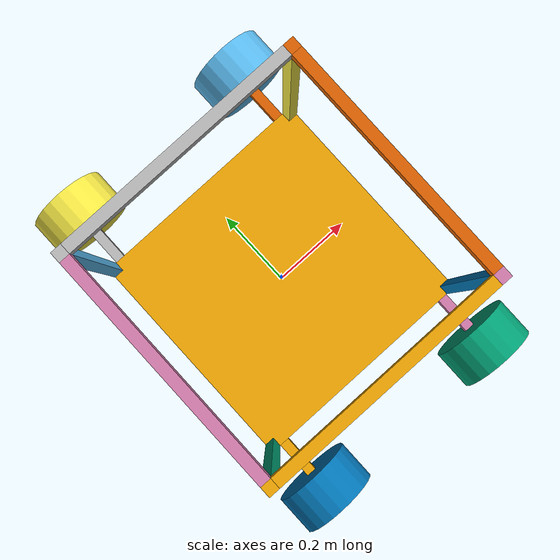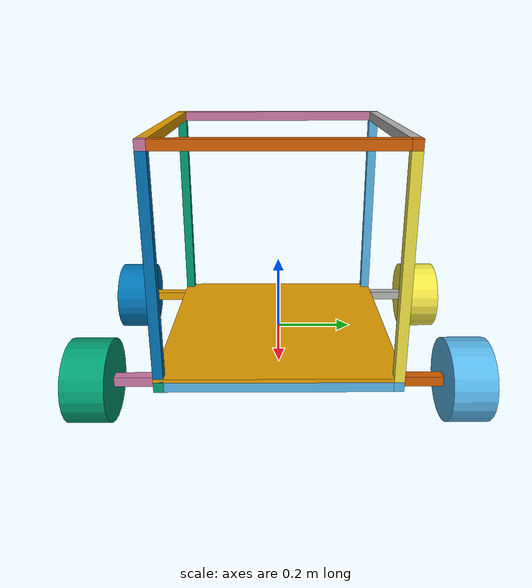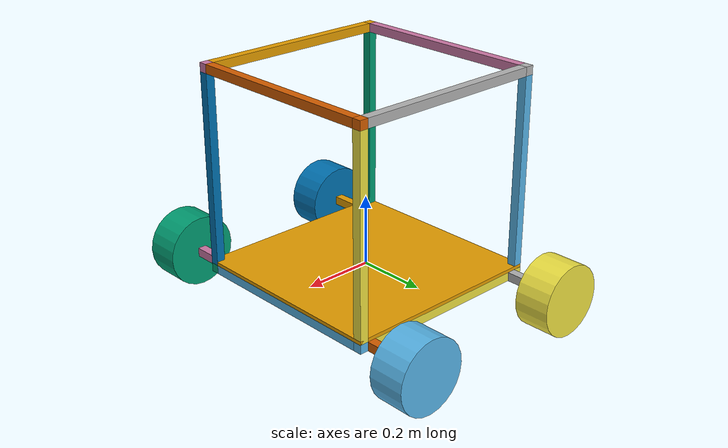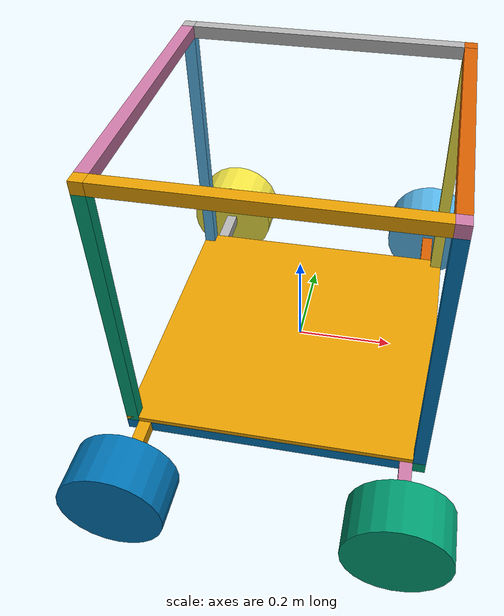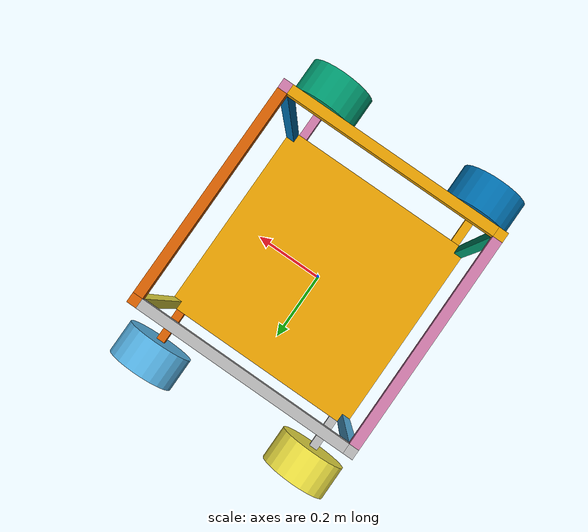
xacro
<?xml version="1.0"?>
<robot xmlns:xacro="http://www.ros.org/wiki/xacro" name="nu_urc_rover">

  <xacro:property name="robot_name" value="nu_urc_rover" />
  <xacro:property name="robot_base_length" value="0.6" />
  <xacro:property name="robot_base_width" value="0.6" />
  <xacro:property name="robot_base_height" value="0.3" />
  <xacro:property name="sheet_metal_thickness" value="0.01" />

  <!-- Cross sectional length of the aluminum bar -->
  <xacro:property name="aluminum_cs_length" value="0.025" />
  <xacro:property name="cube_length" value="0.025" />
  <xacro:property name="aluminum_bar_length" value="${robot_base_length-2*cube_length}" />
  <xacro:property name="aluminum_bar_width" value="${robot_base_width-2*cube_length}" />

  <!-- Chassis link position calculations -->
  <xacro:property name="chassis_x_dist" value="${(robot_base_length - aluminum_cs_length)/2}" />
  <xacro:property name="chassis_y_dist" value="${(robot_base_width - aluminum_cs_length)/2}" />
  <xacro:property name="chassis_z_bottom_dist" value="${(sheet_metal_thickness + cube_length)/2}" />
  <xacro:property name="chassis_z_top_dist" value="${(cube_length + aluminum_bar_length)/2}" />

  <!-- Wheel properties -->
  <xacro:property name="wheel_shaft_length" value="0.1" />
  <xacro:property name="wheel_radius" value="0.1016" />
  <xacro:property name="wheel_length" value="0.1016" />

  <!--                              BEGIN MACRO DEFINITION                              -->

  <!-- Perforated sheet metal -->
  <xacro:macro name="sheet_metal" params="name length width depth">
    <link name="${name}">
      <visual>
        <geometry>
          <box size="${length} ${width} ${depth}" />
          <origin rpy="0.0 0.0 0.0" xyz="0.0 0.0 0.0" />
        </geometry>
      </visual>
    </link>
  </xacro:macro>

  <!-- Extruded aluminum link with variable size -->
  <xacro:macro name="ext_aluminum_x" params="name bar_length cs_length">
    <link name="${name}_chassis">
      <visual>
        <geometry>
          <box size="${bar_length} ${cs_length} ${cs_length}" />
        </geometry>
        <origin rpy="0.0 0.0 0.0" xyz="0.0 0.0 0.0" />
      </visual>
    </link>
  </xacro:macro>

  <xacro:macro name="ext_aluminum_y" params="name bar_length cs_length">
    <link name="${name}_chassis">
      <visual>
        <geometry>
          <box size="${cs_length} ${bar_length} ${cs_length}" />
        </geometry>
        <origin rpy="0.0 0.0 0.0" xyz="0.0 0.0 0.0" />
      </visual>
    </link>
  </xacro:macro>

  <xacro:macro name="ext_aluminum_z" params="name bar_length cs_length">
    <link name="${name}_chassis">
      <visual>
        <geometry>
          <box size="${cs_length} ${cs_length} ${bar_length}" />
        </geometry>
        <origin rpy="0.0 0.0 0.0" xyz="0.0 0.0 0.0" />
      </visual>
    </link>
  </xacro:macro>

  <xacro:macro name="ext_aluminum" params="name bar_length cs_length xyz rpy">
    <link name="${name}_chassis">
      <visual>
        <geometry>
          <box size="${bar_length} ${cs_length} ${cs_length}" />
        </geometry>
        <origin rpy="0.0 0.0 0.0" xyz="0.0 0.0 0.0" />
      </visual>
    </link>
  </xacro:macro>

  <xacro:macro name="ext_aluminum_default" params="name bar_length cs_length">
    <link name="${name}_chassis">
      <visual>
        <geometry>
          <box size="${bar_length} ${cs_length} ${cs_length}" />
        </geometry>
        <origin rpy="0.0 0.0 0.0" xyz="0.0 0.0 0.0" />
      </visual>
    </link>
  </xacro:macro>

  <!-- Cube connection pieces between extruded aluminum links -->
  <xacro:macro name="cube_connector" params="name length">
    <link name="${name}">
      <visual>
        <geometry>
          <box size="${length} ${length} ${length}" />
        </geometry>
        <origin rpy="0.0 0.0 0.0" xyz="0.0 0.0 0.0" />
      </visual>
    </link>
  </xacro:macro>

  <xacro:macro name="cube_connector_default" params="name length">
    <link name="${name}">
      <visual>
        <geometry>
          <box size="${length} ${length} ${length}" />
        </geometry>
        <origin rpy="0.0 0.0 0.0" xyz="0.0 0.0 0.0" />
      </visual>
    </link>
  </xacro:macro>

  <!-- Chassis joint generation macro -->
  <xacro:macro name="chassis_generation" params="parent_base child_base xyz rpy">
    <joint name="${parent_base}_${child_base}_connector" type="continuous">
      <parent link="${parent_base}" />
      <child link="${child_base}" />
      <origin xyz="${xyz}" rpy="${rpy}" />
    </joint>
  </xacro:macro>

  <xacro:macro name="rover_transmission" params="short_name long_name">
    <transmission name="${short_name}_transmission">
      <type>transmission_interface/SimpleTransmission</type>
      <joint name="${short_name}_wheel_joint">
        <hardwareInterface>EffortJointInterface</hardwareInterface>
      </joint>
      <actuator name="${long_name}">
        <hardwareInterface>EffortJointInterface</hardwareInterface>
        <mechanicalReduction>1</mechanicalReduction>
      </actuator>
    </transmission>
  </xacro:macro>

  <xacro:macro name="wheel_shaft" params="name bar_length cs_length">
    <link name="${name}_wheel_shaft">
      <visual>
        <geometry>
          <box size="${cs_length} ${cs_length} ${bar_length}" />
        </geometry>
        <origin rpy="1.570796 0.0 0.0" xyz="0.0 0.0 0.0" />
      </visual>
    </link>
  </xacro:macro>

  <xacro:macro name="wheel" params="name radius length">
    <link name="${name}_wheel">
      <visual>
        <geometry>
          <cylinder radius="${radius}" length="${length}" />
        </geometry>
        <origin xyz="0.0 0.0 0.0" rpy="1.570796 0.0 0.0" />
      </visual>
    </link>
  </xacro:macro>

  <xacro:macro name="chassis_shaft_joint" params="exta_name shaft_name xyz rpy">
    <joint name="${shaft_name}_shaft_joint" type="continuous">
      <parent link="${exta_name}_chassis" />
      <child link="${shaft_name}_wheel_shaft" />
      <origin xyz="${xyz}" rpy="${rpy}" />
    </joint>
  </xacro:macro>

  <xacro:macro name="shaft_wheel_joint" params="wheel_name shaft_name xyz rpy">
    <joint name="${wheel_name}_wheel_joint" type="continuous">
      <parent link="${shaft_name}_wheel_shaft" />
      <child link="${wheel_name}_wheel" />
      <origin xyz="${xyz}" rpy="${rpy}" />
    </joint>
  </xacro:macro>

  <!--                              END MACRO DEFINITION                              -->
  <!--                              BEGIN LINK DEFINITION                              -->

  <!-- Generate the base link -->
  <!-- TODO: Find the shape and dimensions of the base link in build -->
  <xacro:sheet_metal name="base_link" width="${robot_base_width}" length="${robot_base_length}" depth="${sheet_metal_thickness}" />

  <!-- Generate all the extruded aluminum links that are easily modeled -->
  <xacro:ext_aluminum_y name="bf" bar_length="${aluminum_bar_length}" cs_length="${aluminum_cs_length}" />
  <xacro:ext_aluminum_y name="bb" bar_length="${aluminum_bar_length}" cs_length="${aluminum_cs_length}" />
  <xacro:ext_aluminum_x name="bl" bar_length="${aluminum_bar_length}" cs_length="${aluminum_cs_length}" />
  <xacro:ext_aluminum_x name="br" bar_length="${aluminum_bar_length}" cs_length="${aluminum_cs_length}" />
  <xacro:ext_aluminum_y name="tf" bar_length="${aluminum_bar_length}" cs_length="${aluminum_cs_length}" />
  <xacro:ext_aluminum_y name="tb" bar_length="${aluminum_bar_length}" cs_length="${aluminum_cs_length}" />
  <xacro:ext_aluminum_x name="tl" bar_length="${aluminum_bar_length}" cs_length="${aluminum_cs_length}" />
  <xacro:ext_aluminum_x name="tr" bar_length="${aluminum_bar_length}" cs_length="${aluminum_cs_length}" />
  <xacro:ext_aluminum_z name="bt_bl" bar_length="${aluminum_bar_length}" cs_length="${aluminum_cs_length}" />
  <xacro:ext_aluminum_z name="bt_br" bar_length="${aluminum_bar_length}" cs_length="${aluminum_cs_length}" />
  <xacro:ext_aluminum_z name="bt_fl" bar_length="${aluminum_bar_length}" cs_length="${aluminum_cs_length}" />
  <xacro:ext_aluminum_z name="bt_fr" bar_length="${aluminum_bar_length}" cs_length="${aluminum_cs_length}" />

  <!-- Generate all the cube connection pieces -->
  <xacro:cube_connector name="tfl_cube_chassis" length="${cube_length}" />
  <xacro:cube_connector name="tfr_cube_chassis" length="${cube_length}" />
  <xacro:cube_connector name="tbl_cube_chassis" length="${cube_length}" />
  <xacro:cube_connector name="tbr_cube_chassis" length="${cube_length}" />
  <xacro:cube_connector name="bfl_cube_chassis" length="${cube_length}" />
  <xacro:cube_connector name="bfr_cube_chassis" length="${cube_length}" />
  <xacro:cube_connector name="bbl_cube_chassis" length="${cube_length}" />
  <xacro:cube_connector name="bbr_cube_chassis" length="${cube_length}" />

  <!-- Generate all the wheel and associated links -->
  <xacro:wheel_shaft name="fl" bar_length="${wheel_shaft_length}" cs_length="${aluminum_cs_length}" />
  <xacro:wheel_shaft name="fr" bar_length="${wheel_shaft_length}" cs_length="${aluminum_cs_length}" />
  <xacro:wheel_shaft name="bl" bar_length="${wheel_shaft_length}" cs_length="${aluminum_cs_length}" />
  <xacro:wheel_shaft name="br" bar_length="${wheel_shaft_length}" cs_length="${aluminum_cs_length}" />

  <xacro:wheel name="fl" radius="${wheel_radius}" length="${wheel_length}" />
  <xacro:wheel name="fr" radius="${wheel_radius}" length="${wheel_length}" />
  <xacro:wheel name="bl" radius="${wheel_radius}" length="${wheel_length}" />
  <xacro:wheel name="br" radius="${wheel_radius}" length="${wheel_length}" />

  <!--                              END LINK DEFINITION                              -->
  <!--                              BEGIN JOINT DEFINITION                              -->

  <!-- Base link bottom connections -->
  <xacro:chassis_generation parent_base="base_link" child_base="bf_chassis" xyz="${chassis_x_dist} 0.0 -${chassis_z_bottom_dist}" rpy="0.0 0.0 0.0" />
  <xacro:chassis_generation parent_base="base_link" child_base="bb_chassis" xyz="-${chassis_x_dist} 0.0 -${chassis_z_bottom_dist}" rpy="0.0 0.0 0.0" />
  <xacro:chassis_generation parent_base="base_link" child_base="bl_chassis" xyz="0.0 ${chassis_y_dist} -${chassis_z_bottom_dist}" rpy="0.0 0.0 0.0" />
  <xacro:chassis_generation parent_base="base_link" child_base="br_chassis" xyz="0.0 -${chassis_y_dist} -${chassis_z_bottom_dist}" rpy="0.0 0.0 0.0" />
  <xacro:chassis_generation parent_base="base_link" child_base="bfl_cube_chassis" xyz="${chassis_x_dist} ${chassis_y_dist} -${chassis_z_bottom_dist}" rpy="0.0 0.0 0.0" />
  <xacro:chassis_generation parent_base="base_link" child_base="bfr_cube_chassis" xyz="${chassis_x_dist} -${chassis_y_dist} -${chassis_z_bottom_dist}" rpy="0.0 0.0 0.0" />
  <xacro:chassis_generation parent_base="base_link" child_base="bbl_cube_chassis" xyz="-${chassis_x_dist} ${chassis_y_dist} -${chassis_z_bottom_dist}" rpy="0.0 0.0 0.0" />
  <xacro:chassis_generation parent_base="base_link" child_base="bbr_cube_chassis" xyz="-${chassis_x_dist} -${chassis_y_dist} -${chassis_z_bottom_dist}" rpy="0.0 0.0 0.0" />

  <!-- Bottom cube to top link connections -->
  <xacro:chassis_generation parent_base="bfl_cube_chassis" child_base="bt_fl_chassis" xyz="0.0 0.0 ${chassis_z_top_dist}" rpy="0.0 0.0 0.0" />
  <xacro:chassis_generation parent_base="bfr_cube_chassis" child_base="bt_fr_chassis" xyz="0.0 0.0 ${chassis_z_top_dist}" rpy="0.0 0.0 0.0" />
  <xacro:chassis_generation parent_base="bbl_cube_chassis" child_base="bt_bl_chassis" xyz="0.0 0.0 ${chassis_z_top_dist}" rpy="0.0 0.0 0.0" />
  <xacro:chassis_generation parent_base="bbr_cube_chassis" child_base="bt_br_chassis" xyz="0.0 0.0 ${chassis_z_top_dist}" rpy="0.0 0.0 0.0" />

  <!-- Top link to top cube connections -->
  <xacro:chassis_generation parent_base="bt_fl_chassis" child_base="tfl_cube_chassis" xyz="0.0 0.0 ${chassis_z_top_dist}" rpy="0.0 0.0 0.0" />
  <xacro:chassis_generation parent_base="bt_fr_chassis" child_base="tfr_cube_chassis" xyz="0.0 0.0 ${chassis_z_top_dist}" rpy="0.0 0.0 0.0" />
  <xacro:chassis_generation parent_base="bt_bl_chassis" child_base="tbl_cube_chassis" xyz="0.0 0.0 ${chassis_z_top_dist}" rpy="0.0 0.0 0.0" />
  <xacro:chassis_generation parent_base="bt_br_chassis" child_base="tbr_cube_chassis" xyz="0.0 0.0 ${chassis_z_top_dist}" rpy="0.0 0.0 0.0" />

  <!-- Top branching cube connections to links -->
  <xacro:chassis_generation parent_base="tfr_cube_chassis" child_base="tf_chassis" xyz="0.0 ${chassis_y_dist} 0.0" rpy="0.0 0.0 0.0" />
  <xacro:chassis_generation parent_base="tfr_cube_chassis" child_base="tr_chassis" xyz="-${chassis_x_dist} 0.0 0.0" rpy="0.0 0.0 0.0" />
  <xacro:chassis_generation parent_base="tbl_cube_chassis" child_base="tb_chassis" xyz="0.0 -${chassis_y_dist} 0.0" rpy="0.0 0.0 0.0" />
  <xacro:chassis_generation parent_base="tbl_cube_chassis" child_base="tl_chassis" xyz="${chassis_x_dist} 0.0 0.0" rpy="0.0 0.0 0.0" />

  <!-- All of the wheel joints -->
  <xacro:chassis_shaft_joint shaft_name="fl" exta_name="bl" xyz="${(aluminum_bar_length-aluminum_cs_length)/2} ${(wheel_shaft_length+aluminum_cs_length)/2} 0.0" rpy="0.0 0.0 0.0" />
  <xacro:chassis_shaft_joint shaft_name="fr" exta_name="br" xyz="${(aluminum_bar_length-aluminum_cs_length)/2} -${(wheel_shaft_length+aluminum_cs_length)/2} 0.0" rpy="0.0 0.0 0.0" />
  <xacro:chassis_shaft_joint shaft_name="bl" exta_name="bl" xyz="-${(aluminum_bar_length-aluminum_cs_length)/2} ${(wheel_shaft_length+aluminum_cs_length)/2} 0.0" rpy="0.0 0.0 0.0" />
  <xacro:chassis_shaft_joint shaft_name="br" exta_name="br" xyz="-${(aluminum_bar_length-aluminum_cs_length)/2} -${(wheel_shaft_length+aluminum_cs_length)/2} 0.0" rpy="0.0 0.0 0.0" />

  <xacro:shaft_wheel_joint wheel_name="fl" shaft_name="fl" xyz="0.0 ${(wheel_shaft_length+wheel_length)/2} 0.0" rpy="0.0 0.0 0.0" />
  <xacro:shaft_wheel_joint wheel_name="fr" shaft_name="fr" xyz="0.0 ${-(wheel_shaft_length+wheel_length)/2} 0.0" rpy="0.0 0.0 0.0" />
  <xacro:shaft_wheel_joint wheel_name="bl" shaft_name="bl"  xyz="0.0 ${(wheel_shaft_length+wheel_length)/2} 0.0" rpy="0.0 0.0 0.0" />
  <xacro:shaft_wheel_joint wheel_name="br" shaft_name="br" xyz="0.0 ${-(wheel_shaft_length+wheel_length)/2} 0.0" rpy="0.0 0.0 0.0" />

  <!--                               END JOINT DEFINITION                              -->
  <!--                           BEGIN MOTOR TRANSMISSION DEFINITION                   -->

  <xacro:rover_transmission short_name="fl" long_name="front_left" />
  <xacro:rover_transmission short_name="fr" long_name="front_right" />
  <xacro:rover_transmission short_name="bl" long_name="back_left" />
  <xacro:rover_transmission short_name="br" long_name="back_right" />

</robot>
